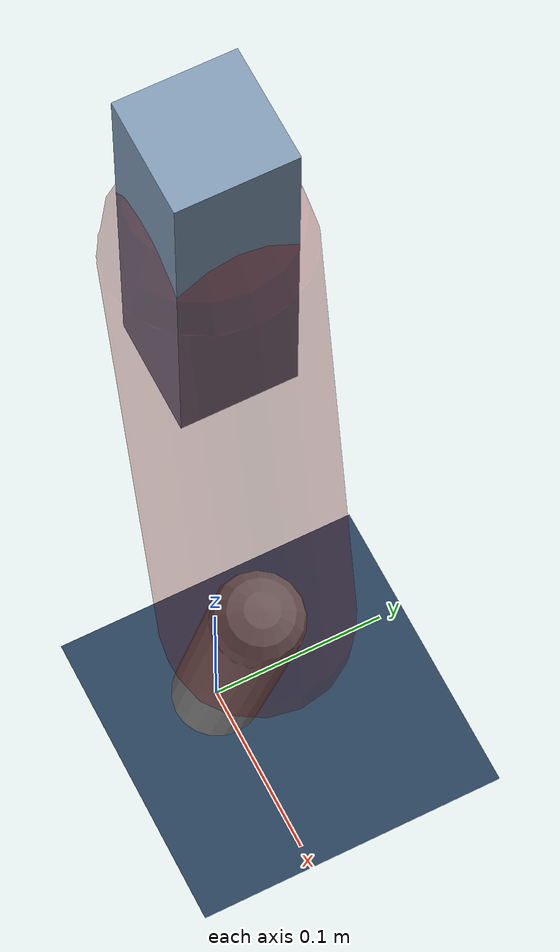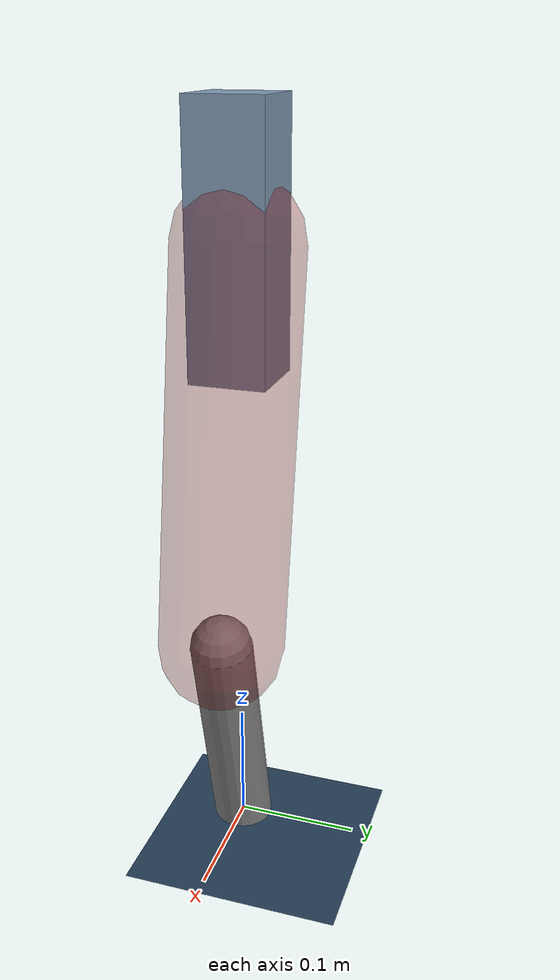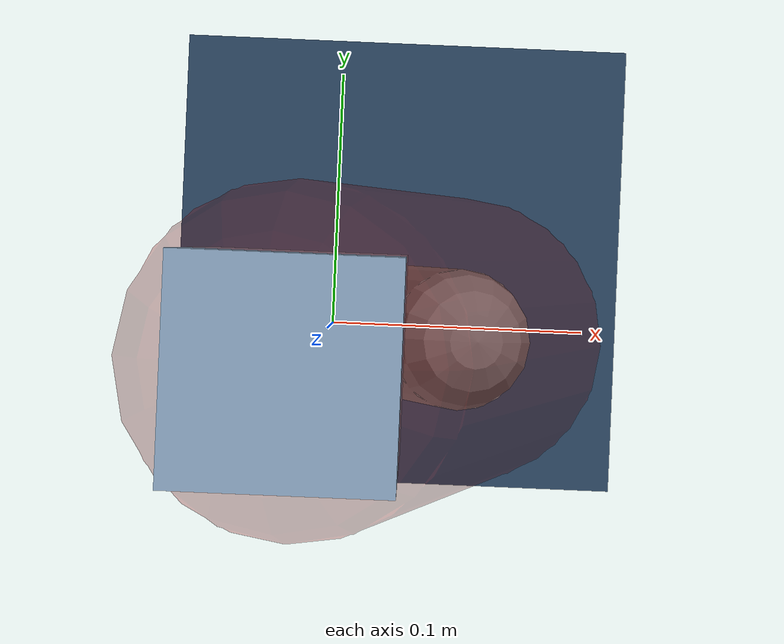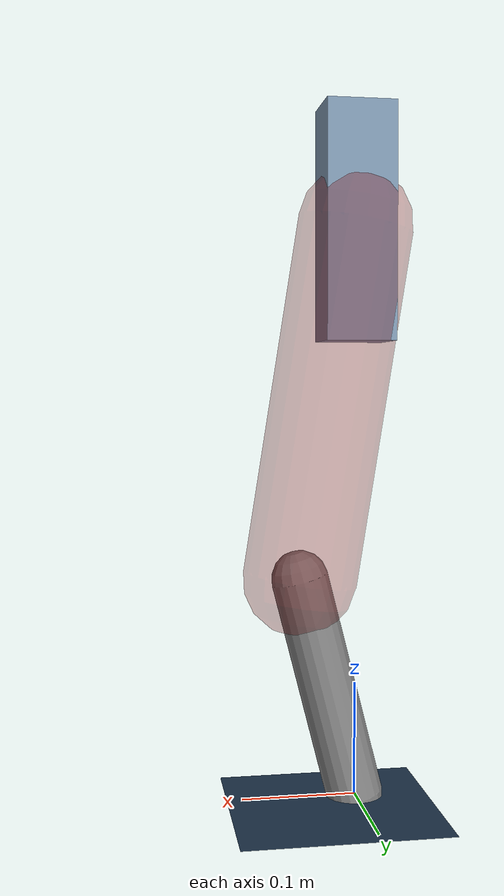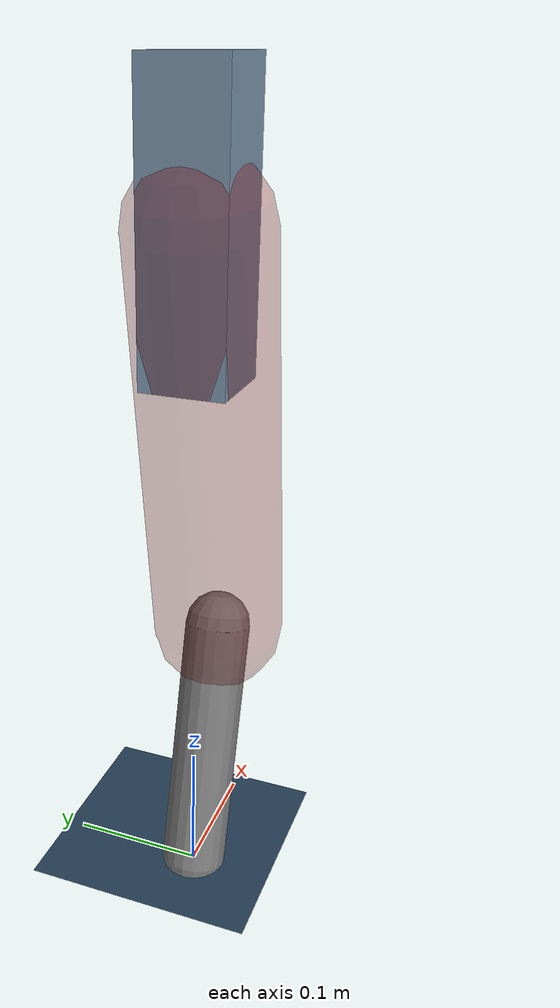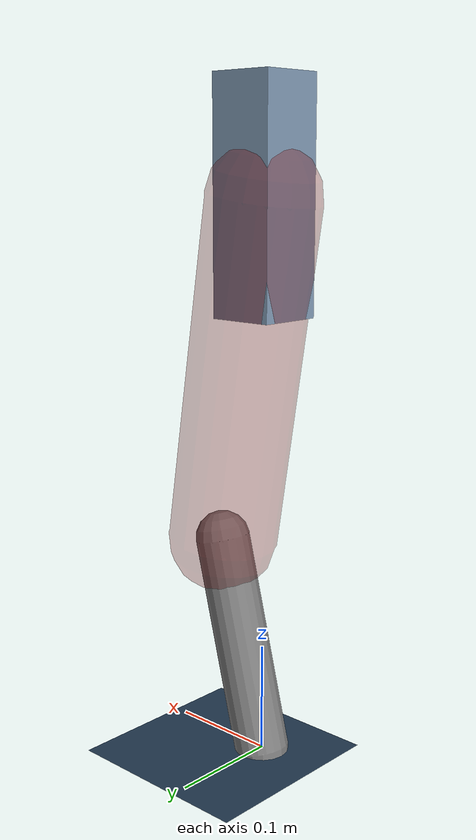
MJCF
<mujoco model="Hopper2D">
	<compiler inertiafromgeom="true" angle="radian" />
	<option timestep="0.001" integrator="implicit" cone="elliptic" solver="Newton" tolerance="1e-10" />

	<default>
		<geom contype="1" conaffinity="1" condim="3" friction="2 0.005 0.0001" solref="0.005 1" />
		<joint limited="true" damping="0.1" />
	</default>

	<asset>
		<texture name="skybox" type="skybox" builtin="gradient" rgb1=".4 .6 .8" rgb2="0 0 0" width="800" height="800" />
		<texture name="grid" type="2d" builtin="checker" rgb1=".1 .2 .3" rgb2=".2 .3 .4" width="300" height="300" mark="edge" markrgb=".2 .3 .4" />
		<material name="ground" texture="grid" texrepeat="1 1" texuniform="true" reflectance="0.1" />
		<material name="leg" rgba="0.5 0.6 0.7 1" />
	</asset>

	<worldbody>

		<geom name="floor" type="plane" size="5 5 0.25" material="ground" />

		<light directional="false" diffuse="0.8 0.8 0.8" specular="0.3 0.3 0.3" pos="0 0 2" dir="0 0 -1" />
		<light mode="targetbodycom" target="base" directional="false" diffuse="0.8 0.8 0.8" specular="0.3 0.3 0.3" pos="0 0 2" dir="0 0 -1" />

		<camera name="fixed" pos="0 -2 1" xyaxes="1 0 0 0 0 1" />
		<camera name="tracking" mode="trackcom" pos="0 -3 1" />

		<body name="root" pos="0 0 0.4999109708692061">
			<joint name="slide_x" type="slide" axis="1 0 0" range="-100 100" />
			<joint name="slide_z" type="slide" axis="0 0 1" range="0 10" />

			<body name="base" pos="0 0 0">
				<geom name="torso" type="box" size="0.03 0.03 0.1" mass="2.5389999999999997" material="leg" />

				<body name="link1" pos="0 0 0" euler="0 1.4118700680846477 0">
					<joint type="hinge" axis="0 -1 0" pos="0 0 0" name="hinge1" limited="true" range="-3.14 3.14" stiffness="0" damping="0.1" />
					<geom name="thigh" type="capsule" fromto="0 0 0 0.30976156662743526 0 0" size="0.05" rgba="0.5 0 0 0.3" mass="1.0152562298940753" />

					<body name="link2" pos="0.30976156662743526 0 0" euler="0 0.4063721012693469 0">
						<joint type="hinge" axis="0 -1 0" pos="0 0 0" name="hinge2" limited="true" range="-3.14 3.14" stiffness="0" damping="0.1" />
						<geom name="shank" type="capsule" fromto="0 0 0 0.20014940424177083 0 0" size="0.025" mass="0.4010195233934166" />

					</body>
				</body>
			</body>
		</body>
	</worldbody>

	<actuator>
		<motor name="torque1" joint="hinge1" ctrlrange="-80.60594821007521 80.60594821007521" ctrllimited="true" gear="1" />
		<motor name="torque2" joint="hinge2" ctrlrange="-94.72975570252518 94.72975570252518" ctrllimited="true" gear="1" />
	</actuator>
</mujoco>
